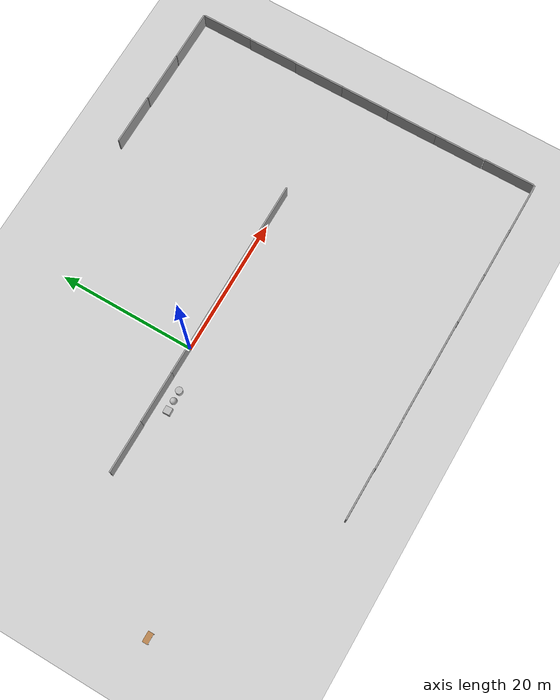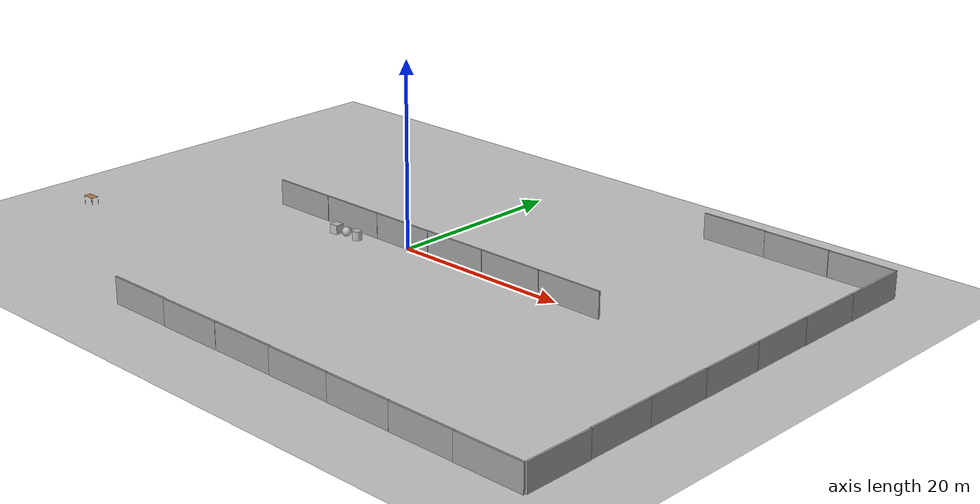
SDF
<sdf version="1.6">
 <world name="default">
  <light name="sun" type="directional">
   <pose>0 0 10 0 -0 0</pose>
   <diffuse>0.8 0.8 0.8 1</diffuse>
   <specular>0.2 0.2 0.2 1</specular>
   <attenuation>
    <range>1000</range>
    <constant>0.9</constant>
    <linear>0.01</linear>
    <quadratic>0.001</quadratic>
   </attenuation>
   <direction>-0.5 0.1 -0.9</direction>
  </light>
  <model name="ground_plane">
   <static>1</static>
   <link name="link">
    <collision name="collision">
     <geometry><plane><normal>0 0 1</normal><size>100 100</size></plane></geometry>
     <surface>
      <contact><collide_bitmask>65535</collide_bitmask></contact>
      <friction><ode><mu>100</mu><mu2>50</mu2></ode></friction>
     </surface>
    </collision>
    <visual name="visual">
     <cast_shadows>0</cast_shadows>
     <geometry><plane><normal>0 0 1</normal><size>100 100</size></plane></geometry>
     <material>
      <script><uri>file://media/materials/scripts/gazebo.material</uri><name>Gazebo/Grey</name></script>
     </material>
    </visual>
   </link>
  </model>
  <gravity>0 0 -9.8</gravity>
  <magnetic_field>6e-06 2.3e-05 -4.2e-05</magnetic_field>
  <atmosphere type="adiabatic"/>
  <physics name="default_physics" default="0" type="ode">
   <max_step_size>0.001</max_step_size>
   <real_time_factor>1</real_time_factor>
   <real_time_update_rate>1000</real_time_update_rate>
  </physics>
  <scene><ambient>0.4 0.4 0.4 1</ambient><background>0.7 0.7 0.7 1</background><shadows>1</shadows></scene>
  <audio><device>default</device></audio>
  <spherical_coordinates>
   <surface_model>EARTH_WGS84</surface_model>
   <latitude_deg>0</latitude_deg>
   <longitude_deg>0</longitude_deg>
   <elevation>0</elevation>
   <heading_deg>0</heading_deg>
  </spherical_coordinates>
  <model name="grey_wall">
   <static>1</static>
   <link name="link">
    <pose>0 0 1.4 0 -0 0</pose>
    <collision name="collision"><geometry><box><size>7.5 0.2 2.8</size></box></geometry></collision>
    <visual name="visual">
     <cast_shadows>0</cast_shadows>
     <geometry><box><size>7.5 0.2 2.8</size></box></geometry>
     <material>
      <script>
       <uri>model://grey_wall/materials/scripts</uri>
       <uri>model://grey_wall/materials/textures</uri>
       <name>vrc/grey_wall</name>
      </script>
     </material>
    </visual>
   </link>
   <pose>-15.6933 -0.17245 0 0 0 -3.14108</pose>
  </model>
  <model name="grey_wall_clone">
   <static>1</static>
   <link name="link">
    <pose>0 0 1.4 0 -0 0</pose>
    <collision name="collision"><geometry><box><size>7.5 0.2 2.8</size></box></geometry></collision>
    <visual name="visual">
     <cast_shadows>0</cast_shadows>
     <geometry><box><size>7.5 0.2 2.8</size></box></geometry>
     <material>
      <script>
       <uri>model://grey_wall/materials/scripts</uri>
       <uri>model://grey_wall/materials/textures</uri>
       <name>vrc/grey_wall</name>
      </script>
     </material>
    </visual>
   </link>
   <pose>-8.16456 -0.130123 0 0 0 -3.14108</pose>
  </model>
  <model name="grey_wall_clone_0">
   <static>1</static>
   <link name="link">
    <pose>0 0 1.4 0 -0 0</pose>
    <collision name="collision"><geometry><box><size>7.5 0.2 2.8</size></box></geometry></collision>
    <visual name="visual">
     <cast_shadows>0</cast_shadows>
     <geometry><box><size>7.5 0.2 2.8</size></box></geometry>
     <material>
      <script>
       <uri>model://grey_wall/materials/scripts</uri>
       <uri>model://grey_wall/materials/textures</uri>
       <name>vrc/grey_wall</name>
      </script>
     </material>
    </visual>
   </link>
   <pose>-0.762045 -0.109298 0 0 0 -3.14108</pose>
  </model>
  <model name="grey_wall_clone_1">
   <static>1</static>
   <link name="link">
    <pose>0 0 1.4 0 -0 0</pose>
    <collision name="collision"><geometry><box><size>7.5 0.2 2.8</size></box></geometry></collision>
    <visual name="visual">
     <cast_shadows>0</cast_shadows>
     <geometry><box><size>7.5 0.2 2.8</size></box></geometry>
     <material>
      <script>
       <uri>model://grey_wall/materials/scripts</uri>
       <uri>model://grey_wall/materials/textures</uri>
       <name>vrc/grey_wall</name>
      </script>
     </material>
    </visual>
   </link>
   <pose>6.72682 -0.085201 0 0 0 -3.14108</pose>
  </model>
  <model name="grey_wall_clone_2">
   <static>1</static>
   <link name="link">
    <pose>0 0 1.4 0 -0 0</pose>
    <collision name="collision"><geometry><box><size>7.5 0.2 2.8</size></box></geometry></collision>
    <visual name="visual">
     <cast_shadows>0</cast_shadows>
     <geometry><box><size>7.5 0.2 2.8</size></box></geometry>
     <material>
      <script>
       <uri>model://grey_wall/materials/scripts</uri>
       <uri>model://grey_wall/materials/textures</uri>
       <name>vrc/grey_wall</name>
      </script>
     </material>
    </visual>
   </link>
   <pose>14.1709 -0.064248 0 0 0 -3.14108</pose>
  </model>
  <model name="grey_wall_clone_3">
   <static>1</static>
   <link name="link">
    <pose>0 0 1.4 0 -0 0</pose>
    <collision name="collision"><geometry><box><size>7.5 0.2 2.8</size></box></geometry></collision>
    <visual name="visual">
     <cast_shadows>0</cast_shadows>
     <geometry><box><size>7.5 0.2 2.8</size></box></geometry>
     <material>
      <script>
       <uri>model://grey_wall/materials/scripts</uri>
       <uri>model://grey_wall/materials/textures</uri>
       <name>vrc/grey_wall</name>
      </script>
     </material>
    </visual>
   </link>
   <pose>21.7025 -0.043242 0 0 0 -3.14108</pose>
  </model>
  <model name="table">
   <static>1</static>
   <link name="link">
    <collision name="surface">
     <pose>0 0 1 0 -0 0</pose>
     <geometry><box><size>1.5 0.8 0.03</size></box></geometry>
     <surface><friction><ode><mu>0.6</mu><mu2>0.6</mu2></ode></friction></surface>
    </collision>
    <visual name="visual1">
     <pose>0 0 1 0 -0 0</pose>
     <geometry><box><size>1.5 0.8 0.03</size></box></geometry>
     <material>
      <script><uri>file://media/materials/scripts/gazebo.material</uri><name>Gazebo/Wood</name></script>
     </material>
    </visual>
    <collision name="front_left_leg">
     <pose>0.68 0.38 0.5 0 -0 0</pose>
     <geometry><cylinder><radius>0.02</radius><length>1</length></cylinder></geometry>
    </collision>
    <visual name="front_left_leg">
     <pose>0.68 0.38 0.5 0 -0 0</pose>
     <geometry><cylinder><radius>0.02</radius><length>1</length></cylinder></geometry>
     <material>
      <script><uri>file://media/materials/scripts/gazebo.material</uri><name>Gazebo/Grey</name></script>
     </material>
    </visual>
    <collision name="front_right_leg">
     <pose>0.68 -0.38 0.5 0 -0 0</pose>
     <geometry><cylinder><radius>0.02</radius><length>1</length></cylinder></geometry>
    </collision>
    <visual name="front_right_leg">
     <pose>0.68 -0.38 0.5 0 -0 0</pose>
     <geometry><cylinder><radius>0.02</radius><length>1</length></cylinder></geometry>
     <material>
      <script><uri>file://media/materials/scripts/gazebo.material</uri><name>Gazebo/Grey</name></script>
     </material>
    </visual>
    <collision name="back_right_leg">
     <pose>-0.68 -0.38 0.5 0 -0 0</pose>
     <geometry><cylinder><radius>0.02</radius><length>1</length></cylinder></geometry>
    </collision>
    <visual name="back_right_leg">
     <pose>-0.68 -0.38 0.5 0 -0 0</pose>
     <geometry><cylinder><radius>0.02</radius><length>1</length></cylinder></geometry>
     <material>
      <script><uri>file://media/materials/scripts/gazebo.material</uri><name>Gazebo/Grey</name></script>
     </material>
    </visual>
    <collision name="back_left_leg">
     <pose>-0.68 0.38 0.5 0 -0 0</pose>
     <geometry><cylinder><radius>0.02</radius><length>1</length></cylinder></geometry>
    </collision>
    <visual name="back_left_leg">
     <pose>-0.68 0.38 0.5 0 -0 0</pose>
     <geometry><cylinder><radius>0.02</radius><length>1</length></cylinder></geometry>
     <material>
      <script><uri>file://media/materials/scripts/gazebo.material</uri><name>Gazebo/Grey</name></script>
     </material>
    </visual>
   </link>
   <pose>-34.1648 -14.9562 0 0 -0 0</pose>
  </model>
  <model name="textured_shapes">
   <pose>-7.21003 -1.91868 0.5 0 0 -1.53016</pose>
   <link name="box">
    <pose>0 -1.5 0 0 -0 0</pose>
    <collision name="collision"><geometry><box><size>1 1 1</size></box></geometry></collision>
    <visual name="visual">
     <geometry><box><size>1 1 1</size></box></geometry>
     <material>
      <script>
       <uri>model://textured_shapes/materials/scripts</uri>
       <uri>model://textured_shapes/materials/textures</uri>
       <name>TexturedShape/Squares</name>
      </script>
     </material>
    </visual>
    <inertial>
     <inertia><ixx>1</ixx><ixy>0</ixy><ixz>0</ixz><iyy>1</iyy><iyz>0</iyz><izz>1</izz></inertia>
     <mass>1</mass>
    </inertial>
   </link>
   <link name="sphere">
    <collision name="collision"><geometry><sphere><radius>0.5</radius></sphere></geometry></collision>
    <visual name="visual">
     <geometry><sphere><radius>0.5</radius></sphere></geometry>
     <material>
      <script>
       <uri>model://textured_shapes/materials/scripts</uri>
       <uri>model://textured_shapes/materials/textures</uri>
       <name>TexturedShape/Squares</name>
      </script>
     </material>
    </visual>
    <inertial>
     <inertia><ixx>1</ixx><ixy>0</ixy><ixz>0</ixz><iyy>1</iyy><iyz>0</iyz><izz>1</izz></inertia>
     <mass>1</mass>
    </inertial>
   </link>
   <link name="cylinder">
    <pose>0 1.5 0 0 -0 0</pose>
    <collision name="collision">
     <geometry><cylinder><radius>0.5</radius><length>1</length></cylinder></geometry>
    </collision>
    <visual name="visual">
     <geometry><cylinder><radius>0.5</radius><length>1</length></cylinder></geometry>
     <material>
      <script>
       <uri>model://textured_shapes/materials/scripts</uri>
       <uri>model://textured_shapes/materials/textures</uri>
       <name>TexturedShape/Squares</name>
      </script>
     </material>
    </visual>
    <inertial>
     <inertia><ixx>1</ixx><ixy>0</ixy><ixz>0</ixz><iyy>1</iyy><iyz>0</iyz><izz>1</izz></inertia>
     <mass>1</mass>
    </inertial>
   </link>
  </model>
  <model name="grey_wall_clone_3_clone">
   <static>1</static>
   <link name="link">
    <pose>0 0 1.4 0 -0 0</pose>
    <collision name="collision"><geometry><box><size>7.5 0.2 2.8</size></box></geometry></collision>
    <visual name="visual">
     <cast_shadows>0</cast_shadows>
     <geometry><box><size>7.5 0.2 2.8</size></box></geometry>
     <material>
      <script>
       <uri>model://grey_wall/materials/scripts</uri>
       <uri>model://grey_wall/materials/textures</uri>
       <name>vrc/grey_wall</name>
      </script>
     </material>
    </visual>
   </link>
   <pose>23.5676 23.5314 0 0 0 -3.14108</pose>
  </model>
  <model name="grey_wall_clone_3_clone_0">
   <static>1</static>
   <link name="link">
    <pose>0 0 1.4 0 -0 0</pose>
    <collision name="collision"><geometry><box><size>7.5 0.2 2.8</size></box></geometry></collision>
    <visual name="visual">
     <cast_shadows>0</cast_shadows>
     <geometry><box><size>7.5 0.2 2.8</size></box></geometry>
     <material>
      <script>
       <uri>model://grey_wall/materials/scripts</uri>
       <uri>model://grey_wall/materials/textures</uri>
       <name>vrc/grey_wall</name>
      </script>
     </material>
    </visual>
   </link>
   <pose>31.1148 23.4747 0 0 0 -3.14108</pose>
  </model>
  <model name="grey_wall_clone_3_clone_1">
   <static>1</static>
   <link name="link">
    <pose>0 0 1.4 0 -0 0</pose>
    <collision name="collision"><geometry><box><size>7.5 0.2 2.8</size></box></geometry></collision>
    <visual name="visual">
     <cast_shadows>0</cast_shadows>
     <geometry><box><size>7.5 0.2 2.8</size></box></geometry>
     <material>
      <script>
       <uri>model://grey_wall/materials/scripts</uri>
       <uri>model://grey_wall/materials/textures</uri>
       <name>vrc/grey_wall</name>
      </script>
     </material>
    </visual>
   </link>
   <pose>38.6829 23.463 0 0 0 -3.14108</pose>
  </model>
  <model name="grey_wall_clone_3_clone_2">
   <static>1</static>
   <link name="link">
    <pose>0 0 1.4 0 -0 0</pose>
    <collision name="collision"><geometry><box><size>7.5 0.2 2.8</size></box></geometry></collision>
    <visual name="visual">
     <cast_shadows>0</cast_shadows>
     <geometry><box><size>7.5 0.2 2.8</size></box></geometry>
     <material>
      <script>
       <uri>model://grey_wall/materials/scripts</uri>
       <uri>model://grey_wall/materials/textures</uri>
       <name>vrc/grey_wall</name>
      </script>
     </material>
    </visual>
   </link>
   <pose>42.4622 19.5878 0 0 -0 1.57688</pose>
  </model>
  <model name="grey_wall_clone_3_clone_2_clone">
   <static>1</static>
   <link name="link">
    <pose>0 0 1.4 0 -0 0</pose>
    <collision name="collision"><geometry><box><size>7.5 0.2 2.8</size></box></geometry></collision>
    <visual name="visual">
     <cast_shadows>0</cast_shadows>
     <geometry><box><size>7.5 0.2 2.8</size></box></geometry>
     <material>
      <script>
       <uri>model://grey_wall/materials/scripts</uri>
       <uri>model://grey_wall/materials/textures</uri>
       <name>vrc/grey_wall</name>
      </script>
     </material>
    </visual>
   </link>
   <pose>42.4624 12.0377 0 0 -0 1.57688</pose>
  </model>
  <model name="grey_wall_clone_3_clone_2_clone_0">
   <static>1</static>
   <link name="link">
    <pose>0 0 1.4 0 -0 0</pose>
    <collision name="collision"><geometry><box><size>7.5 0.2 2.8</size></box></geometry></collision>
    <visual name="visual">
     <cast_shadows>0</cast_shadows>
     <geometry><box><size>7.5 0.2 2.8</size></box></geometry>
     <material>
      <script>
       <uri>model://grey_wall/materials/scripts</uri>
       <uri>model://grey_wall/materials/textures</uri>
       <name>vrc/grey_wall</name>
      </script>
     </material>
    </visual>
   </link>
   <pose>42.4716 4.55458 0 0 -0 1.57688</pose>
  </model>
  <model name="grey_wall_clone_3_clone_2_clone_1">
   <static>1</static>
   <link name="link">
    <pose>0 0 1.4 0 -0 0</pose>
    <collision name="collision"><geometry><box><size>7.5 0.2 2.8</size></box></geometry></collision>
    <visual name="visual">
     <cast_shadows>0</cast_shadows>
     <geometry><box><size>7.5 0.2 2.8</size></box></geometry>
     <material>
      <script>
       <uri>model://grey_wall/materials/scripts</uri>
       <uri>model://grey_wall/materials/textures</uri>
       <name>vrc/grey_wall</name>
      </script>
     </material>
    </visual>
   </link>
   <pose>42.5196 -2.75959 0 0 -0 1.57688</pose>
  </model>
  <model name="grey_wall_clone_3_clone_2_clone_2">
   <static>1</static>
   <link name="link">
    <pose>0 0 1.4 0 -0 0</pose>
    <collision name="collision"><geometry><box><size>7.5 0.2 2.8</size></box></geometry></collision>
    <visual name="visual">
     <cast_shadows>0</cast_shadows>
     <geometry><box><size>7.5 0.2 2.8</size></box></geometry>
     <material>
      <script>
       <uri>model://grey_wall/materials/scripts</uri>
       <uri>model://grey_wall/materials/textures</uri>
       <name>vrc/grey_wall</name>
      </script>
     </material>
    </visual>
   </link>
   <pose>42.5306 -10.2405 0 0 -0 1.57688</pose>
  </model>
  <model name="grey_wall_clone_3_clone_2_clone_3">
   <static>1</static>
   <link name="link">
    <pose>0 0 1.4 0 -0 0</pose>
    <collision name="collision"><geometry><box><size>7.5 0.2 2.8</size></box></geometry></collision>
    <visual name="visual">
     <cast_shadows>0</cast_shadows>
     <geometry><box><size>7.5 0.2 2.8</size></box></geometry>
     <material>
      <script>
       <uri>model://grey_wall/materials/scripts</uri>
       <uri>model://grey_wall/materials/textures</uri>
       <name>vrc/grey_wall</name>
      </script>
     </material>
    </visual>
   </link>
   <pose>42.5835 -17.6701 0 0 -0 1.57688</pose>
  </model>
  <model name="grey_wall_clone_3_clone_2_clone_4">
   <static>1</static>
   <link name="link">
    <pose>0 0 1.4 0 -0 0</pose>
    <collision name="collision"><geometry><box><size>7.5 0.2 2.8</size></box></geometry></collision>
    <visual name="visual">
     <cast_shadows>0</cast_shadows>
     <geometry><box><size>7.5 0.2 2.8</size></box></geometry>
     <material>
      <script>
       <uri>model://grey_wall/materials/scripts</uri>
       <uri>model://grey_wall/materials/textures</uri>
       <name>vrc/grey_wall</name>
      </script>
     </material>
    </visual>
   </link>
   <pose>42.6865 -25.2703 0 0 -0 1.57688</pose>
  </model>
  <model name="grey_wall_clone_3_clone_1_clone">
   <static>1</static>
   <link name="link">
    <pose>0 0 1.4 0 -0 0</pose>
    <collision name="collision"><geometry><box><size>7.5 0.2 2.8</size></box></geometry></collision>
    <visual name="visual">
     <cast_shadows>0</cast_shadows>
     <geometry><box><size>7.5 0.2 2.8</size></box></geometry>
     <material>
      <script>
       <uri>model://grey_wall/materials/scripts</uri>
       <uri>model://grey_wall/materials/textures</uri>
       <name>vrc/grey_wall</name>
      </script>
     </material>
    </visual>
   </link>
   <pose>38.9229 -29.1738 0 0 0 -3.14108</pose>
  </model>
  <model name="grey_wall_clone_3_clone_1_clone_0">
   <static>1</static>
   <link name="link">
    <pose>0 0 1.4 0 -0 0</pose>
    <collision name="collision"><geometry><box><size>7.5 0.2 2.8</size></box></geometry></collision>
    <visual name="visual">
     <cast_shadows>0</cast_shadows>
     <geometry><box><size>7.5 0.2 2.8</size></box></geometry>
     <material>
      <script>
       <uri>model://grey_wall/materials/scripts</uri>
       <uri>model://grey_wall/materials/textures</uri>
       <name>vrc/grey_wall</name>
      </script>
     </material>
    </visual>
   </link>
   <pose>31.5827 -29.1492 0 0 0 -3.14108</pose>
  </model>
  <model name="grey_wall_clone_3_clone_1_clone_1">
   <static>1</static>
   <link name="link">
    <pose>0 0 1.4 0 -0 0</pose>
    <collision name="collision"><geometry><box><size>7.5 0.2 2.8</size></box></geometry></collision>
    <visual name="visual">
     <cast_shadows>0</cast_shadows>
     <geometry><box><size>7.5 0.2 2.8</size></box></geometry>
     <material>
      <script>
       <uri>model://grey_wall/materials/scripts</uri>
       <uri>model://grey_wall/materials/textures</uri>
       <name>vrc/grey_wall</name>
      </script>
     </material>
    </visual>
   </link>
   <pose>24.0524 -29.1282 0 0 0 -3.14108</pose>
  </model>
  <model name="grey_wall_clone_3_clone_1_clone_2">
   <static>1</static>
   <link name="link">
    <pose>0 0 1.4 0 -0 0</pose>
    <collision name="collision"><geometry><box><size>7.5 0.2 2.8</size></box></geometry></collision>
    <visual name="visual">
     <cast_shadows>0</cast_shadows>
     <geometry><box><size>7.5 0.2 2.8</size></box></geometry>
     <material>
      <script>
       <uri>model://grey_wall/materials/scripts</uri>
       <uri>model://grey_wall/materials/textures</uri>
       <name>vrc/grey_wall</name>
      </script>
     </material>
    </visual>
   </link>
   <pose>16.5248 -29.0889 0 0 0 -3.14108</pose>
  </model>
  <model name="grey_wall_clone_3_clone_1_clone_3">
   <static>1</static>
   <link name="link">
    <pose>0 0 1.4 0 -0 0</pose>
    <collision name="collision"><geometry><box><size>7.5 0.2 2.8</size></box></geometry></collision>
    <visual name="visual">
     <cast_shadows>0</cast_shadows>
     <geometry><box><size>7.5 0.2 2.8</size></box></geometry>
     <material>
      <script>
       <uri>model://grey_wall/materials/scripts</uri>
       <uri>model://grey_wall/materials/textures</uri>
       <name>vrc/grey_wall</name>
      </script>
     </material>
    </visual>
   </link>
   <pose>9.06816 -29.0492 0 0 0 -3.14108</pose>
  </model>
  <model name="grey_wall_clone_3_clone_1_clone_4">
   <static>1</static>
   <link name="link">
    <pose>0 0 1.4 0 -0 0</pose>
    <collision name="collision"><geometry><box><size>7.5 0.2 2.8</size></box></geometry></collision>
    <visual name="visual">
     <cast_shadows>0</cast_shadows>
     <geometry><box><size>7.5 0.2 2.8</size></box></geometry>
     <material>
      <script>
       <uri>model://grey_wall/materials/scripts</uri>
       <uri>model://grey_wall/materials/textures</uri>
       <name>vrc/grey_wall</name>
      </script>
     </material>
    </visual>
   </link>
   <pose>1.64618 -29.0778 0 0 0 -3.14108</pose>
  </model>
  <model name="grey_wall_clone_3_clone_1_clone_5">
   <static>1</static>
   <link name="link">
    <pose>0 0 1.4 0 -0 0</pose>
    <collision name="collision"><geometry><box><size>7.5 0.2 2.8</size></box></geometry></collision>
    <visual name="visual">
     <cast_shadows>0</cast_shadows>
     <geometry><box><size>7.5 0.2 2.8</size></box></geometry>
     <material>
      <script>
       <uri>model://grey_wall/materials/scripts</uri>
       <uri>model://grey_wall/materials/textures</uri>
       <name>vrc/grey_wall</name>
      </script>
     </material>
    </visual>
   </link>
   <pose>-5.838 -29.0188 0 0 0 -3.14108</pose>
  </model>
 </world>
</sdf>
